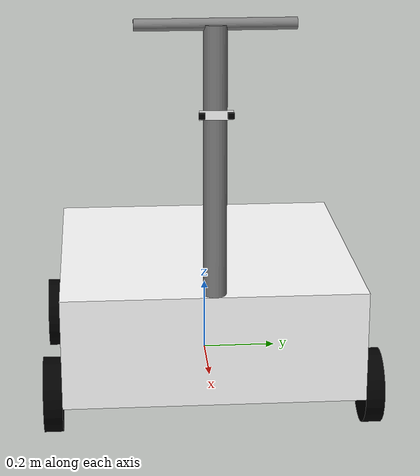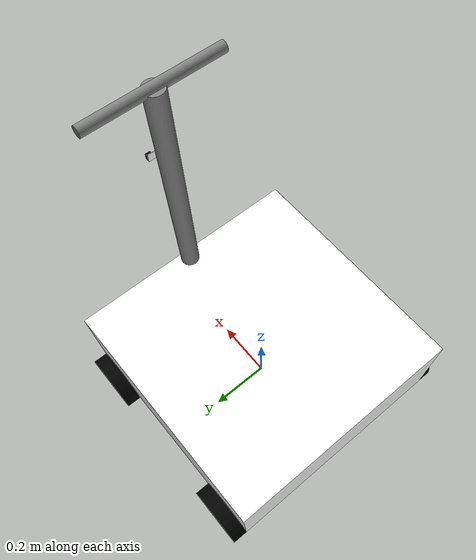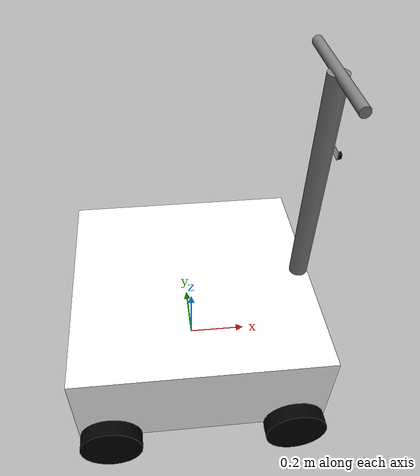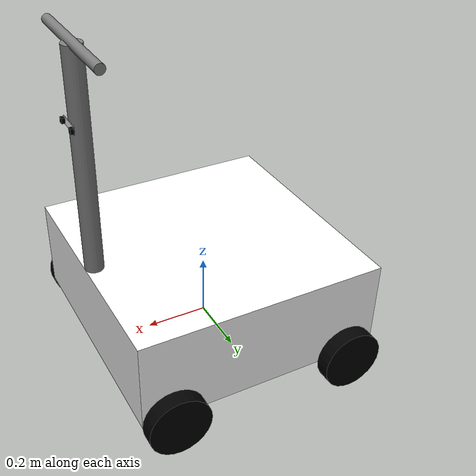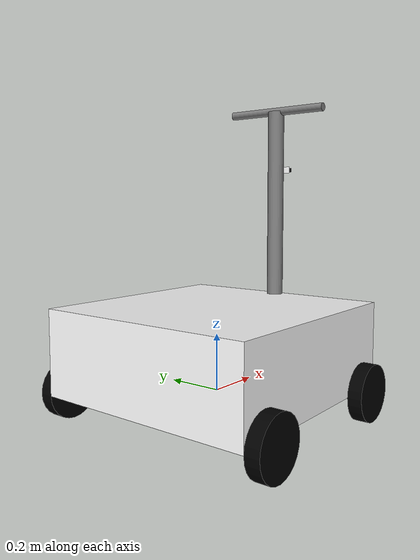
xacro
<?xml version="1.0"?>
<robot xmlns:xacro="https://www.ros.org/wiki/xacro" name="robot">

  <xacro:arg name="controller_yaml" default=""/>

  <xacro:include filename="robot_core.xacro"/>
  <xacro:include filename="control_plugin.xacro"/>
  <xacro:include filename="depth_camera.xacro"/>

  <xacro:add_drive_plugins controller_yaml="$(arg controller_yaml)"/>
  <xacro:robot_core/>

</robot>

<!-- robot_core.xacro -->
<robot xmlns:xacro="http://www.ros.org/wiki/xacro">
  <xacro:include filename="inertial_macros.xacro"/>
  <xacro:macro name="robot_core" params="">

    <material name="material_red">
        <color rgba="1.0 0.0 0.0 1.0"/>
    </material>

    <material name="material_green">
        <color rgba="0.0 1.0 0.0 1.0"/>
    </material>

    <material name="material_blue">
        <color rgba="0.0 0.0 1.0 1.0"/>
    </material>

    <material name="material_yellow">
        <color rgba="1.0 1.0 0.0 1.0"/>
    </material>

    <material name="material_purple">
        <color rgba="0.5 0.0 0.5 1.0"/>
    </material>

    <material name="material_cyan">
        <color rgba="0.0 1.0 1.0 1.0"/>
    </material>

    <material name="material_orange">
        <color rgba="1.0 0.5 0.0 1.0"/>
    </material>

    <material name="material_pink">
        <color rgba="1.0 0.0 1.0 1.0"/>
    </material>

    <material name="material_brown">
        <color rgba="0.6 0.4 0.2 1.0"/>
    </material>

    <material name="material_gray">
        <color rgba="0.5 0.5 0.5 1.0"/>
    </material>

    <material name="material_white">
        <color rgba="1.0 1.0 1.0 1.0"/>
    </material>

    <material name="material_black">
        <color rgba="0.0 0.0 0.0 1.0"/>
    </material>

    <!-- BASE LINK -->

    <link name="base_link">
    </link>

    <!-- CHASSIS LINK -->

    <joint name="chassis_joint" type="fixed">
        <parent link="base_link" />
        <child link="chassis" />
        <origin xyz="-0.4 0 0" />
    </joint>

    <link name="chassis">
        <visual>
            <origin xyz="0.4 0 0.15" />
            <geometry>
                <box size="0.8 0.8 0.3"/>
            </geometry>
            <material name="material_white"/>
        </visual>
        <collision>
            <origin xyz="0.4 0 0.15" />
            <geometry>
                <box size="0.8 0.8 0.3"/>
            </geometry>
            <material name="material_white"/>
        </collision>
        <xacro:inertial_box mass="30" x="0.8" y="0.8" z="0.3">
            <origin xyz="0.4 0 0.15" rpy="0 0 0" />
        </xacro:inertial_box>
    </link>
    <gazebo reference="chassis">
        <material> Gazebo/White </material>
    </gazebo>

    <!-- RIGHT BACK WHEEL LINK-->

    <joint name="right_back_wheel_joint" type="continuous">
        <parent link="base_link" />
        <child link="right_back_wheel" />
        <origin xyz="-0.3 -0.425 0" rpy="0 0 0" />
        <axis xyz="0 1 0" />
    </joint>
    <link name="right_back_wheel">
        <visual>
            <origin xyz="0 0 0" rpy="${3*pi/2} 0 0"/>
            <geometry>
                <cylinder length="0.05" radius="0.1"/>
            </geometry>
            <material name="material_black"/>
        </visual>
        <collision>
            <origin xyz="0 0 0" rpy="${3*pi/2} 0 0"/>
            <geometry>
                <cylinder length="0.05" radius="0.1"/>
            </geometry>
        </collision>
        <xacro:inertial_cylinder mass="0.5" length="0.05" radius="0.1">
            <origin xyz="0 0 0" rpy="0 0 0"/>
        </xacro:inertial_cylinder>
    </link>
    <gazebo reference="right_back_wheel">
        <material> Gazebo/Blue </material>
        <mu1>1.0</mu1>
        <mu2>0.1</mu2>
        <fdir1>1 0 0</fdir1>
    </gazebo>

    <!-- LEFT BACK WHEEL LINK-->

    <joint name="left_back_wheel_joint" type="continuous">
        <parent link="base_link" />
        <child link="left_back_wheel" />
        <origin xyz="-0.3 0.425 0" rpy="0 0 0" />
        <axis xyz="0 1 0" />
    </joint>

    <link name="left_back_wheel">
        <visual>
            <origin xyz="0 0 0" rpy="${-pi/2} 0 0"/>
            <geometry>
                <cylinder length="0.05" radius="0.1"/>
            </geometry>
            <material name="material_black"/>
        </visual>
        <collision>
            <origin xyz="0 0 0" rpy="${-pi/2} 0 0"/>
            <geometry>
                <cylinder length="0.05" radius="0.1"/>
            </geometry>
        </collision>
        <xacro:inertial_cylinder mass="0.5" length="0.05" radius="0.1">
            <origin xyz="0 0 0" rpy="0 0 0"/>
        </xacro:inertial_cylinder>
    </link>
    <gazebo reference="left_back_wheel">
        <material> Gazebo/Blue </material>
        <mu1>1.0</mu1>
        <mu2>0.1</mu2>
        <fdir1>1 0 0</fdir1>
    </gazebo>

    <!-- RIGHT FRONT WHEEL LINK-->

    <joint name="right_front_wheel_joint" type="continuous">
        <parent link="base_link" />
        <child link="right_front_wheel" />
        <origin xyz="0.3 -0.425 0" rpy="0 0 0" />
        <axis xyz="0 1 0" />
    </joint>
    <link name="right_front_wheel">
        <visual>
            <origin xyz="0 0 0" rpy="${3*pi/2} 0 0"/>
            <geometry>
                <cylinder length="0.05" radius="0.1"/>
            </geometry>
            <material name="material_black"/>
        </visual>
        <collision>
            <origin xyz="0 0 0" rpy="${3*pi/2} 0 0"/>
            <geometry>
                <cylinder length="0.05" radius="0.1"/>
            </geometry>
        </collision>
        <xacro:inertial_cylinder mass="0.5" length="0.05" radius="0.1">
            <origin xyz="0 0 0" rpy="0 0 0"/>
        </xacro:inertial_cylinder>
    </link>
    <gazebo reference="right_front_wheel">
        <material> Gazebo/Blue </material>
        <mu1>1.0</mu1>
        <mu2>0.1</mu2>
        <fdir1>1 0 0</fdir1>
    </gazebo>

    <!-- LEFT FRONT WHEEL LINK-->

    <joint name="left_front_wheel_joint" type="continuous">
        <parent link="base_link" />
        <child link="left_front_wheel" />
        <origin xyz="0.3 0.425 0" rpy="0 0 0" />
        <axis xyz="0 1 0" />
    </joint>

    <link name="left_front_wheel">
        <visual>
            <origin xyz="0 0 0" rpy="${-pi/2} 0 0"/>
            <geometry>
                <cylinder length="0.05" radius="0.1"/>
            </geometry>
            <material name="material_black"/>
        </visual>
        <collision>
            <origin xyz="0 0 0" rpy="${-pi/2} 0 0"/>
            <geometry>
                <cylinder length="0.05" radius="0.1"/>
            </geometry>
        </collision>
        <xacro:inertial_cylinder mass="0.5" length="0.05" radius="0.1">
            <origin xyz="0 0 0" rpy="0 0 0"/>
        </xacro:inertial_cylinder>
    </link>
    <gazebo reference="left_front_wheel">
        <material> Gazebo/Blue </material>
        <mu1>1.0</mu1>
        <mu2>0.1</mu2>
        <fdir1>1 0 0</fdir1>
    </gazebo>

    <!-- HANDLE MIDDLE LINK-->

    <joint name="handle_middle_joint" type="fixed">
        <parent link="base_link" />
        <child link="handle_middle" />
        <origin xyz="0.37 0 0.65" rpy="0 0 0" />
        <axis xyz="0 0 0" />
    </joint>

    <link name="handle_middle">
        <visual>
            <origin xyz="0 0 0" />
            <geometry>
                <cylinder length="0.7" radius="0.03"/>
            </geometry>
            <material name="material_gray"/>
        </visual>
        <collision>
            <origin xyz="0 0 0" />
            <geometry>
                <cylinder length="0.7" radius="0.03"/>
            </geometry>
        </collision>
        <xacro:inertial_cylinder mass="0.1" length="0.7" radius="0.03">
            <origin xyz="0 0 0" rpy="0 0 0"/>
        </xacro:inertial_cylinder>
    </link>
    <gazebo reference="handle_middle">
        <material> Gazebo/Grey </material>
    </gazebo>

    <!-- HANDLE LINK-->

    <joint name="handle_joint" type="fixed">
        <parent link="handle_middle" />
        <child link="handle" />
        <origin xyz="0 0 0.35" rpy="${pi/2} 0 0" />
        <axis xyz="0 0 0" />
    </joint>

    <link name="handle">
        <visual>
            <origin xyz="0 0 0" />
            <geometry>
                <cylinder length="0.4" radius="0.015"/>
            </geometry>
            <material name="material_gray"/>
        </visual>
        <collision>
            <origin xyz="0 0 0" />
            <geometry>
                <cylinder length="0.4" radius="0.015"/>
            </geometry>
        </collision>
        <xacro:inertial_cylinder mass="0.1" length="0.4" radius="0.015">
            <origin xyz="0 0 0" rpy="0 0 0"/>
        </xacro:inertial_cylinder>
    </link>
    <gazebo reference="handle">
        <material> Gazebo/Grey </material>
    </gazebo>
    <!-- Transmissions for wheel joints -->
    <transmission name="left_front_wheel_trans">
    <type>transmission_interface/SimpleTransmission</type>
    <joint name="left_front_wheel_joint">
        <hardwareInterface>velocity</hardwareInterface>
    </joint>
    <actuator name="left_front_wheel_motor">
        <hardwareInterface>velocity</hardwareInterface>
        <mechanicalReduction>1</mechanicalReduction>
    </actuator>
    </transmission>

    <transmission name="left_back_wheel_trans">
    <type>transmission_interface/SimpleTransmission</type>
    <joint name="left_back_wheel_joint">
        <hardwareInterface>velocity</hardwareInterface>
    </joint>
    <actuator name="left_back_wheel_motor">
        <hardwareInterface>velocity</hardwareInterface>
        <mechanicalReduction>1</mechanicalReduction>
    </actuator>
    </transmission>

    <transmission name="right_front_wheel_trans">
    <type>transmission_interface/SimpleTransmission</type>
    <joint name="right_front_wheel_joint">
        <hardwareInterface>velocity</hardwareInterface>
    </joint>
    <actuator name="right_front_wheel_motor">
        <hardwareInterface>velocity</hardwareInterface>
        <mechanicalReduction>1</mechanicalReduction>
    </actuator>
    </transmission>

    <transmission name="right_back_wheel_trans">
    <type>transmission_interface/SimpleTransmission</type>
    <joint name="right_back_wheel_joint">
        <hardwareInterface>velocity</hardwareInterface>
    </joint>
    <actuator name="right_back_wheel_motor">
        <hardwareInterface>velocity</hardwareInterface>
        <mechanicalReduction>1</mechanicalReduction>
    </actuator>
    </transmission>

    <ros2_control name="GazeboSystem" type="system">
    <hardware>
        <plugin>gazebo_ros2_control/GazeboSystem</plugin>
    </hardware>

    <joint name="left_front_wheel_joint">
        <command_interface name="velocity"/>
        <state_interface name="velocity"/>
        <state_interface name="position"/>
    </joint>

    <joint name="left_back_wheel_joint">
        <command_interface name="velocity"/>
        <state_interface name="velocity"/>
        <state_interface name="position"/>
    </joint>

    <joint name="right_front_wheel_joint">
        <command_interface name="velocity"/>
        <state_interface name="velocity"/>
        <state_interface name="position"/>
    </joint>

    <joint name="right_back_wheel_joint">
        <command_interface name="velocity"/>
        <state_interface name="velocity"/>
        <state_interface name="position"/>
    </joint>
    </ros2_control>
    </xacro:macro>
</robot>

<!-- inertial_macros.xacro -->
<robot xmlns:xacro="http://www.ros.org/wiki/xacro" >

    <!-- Specify some standard inertial calculations https://en.wikipedia.org/wiki/List_of_moments_of_inertia -->
    <!-- These make use of xacro's mathematical functionality -->

    <xacro:macro name="inertial_sphere" params="mass radius *origin">
        <inertial>
            <xacro:insert_block name="origin"/>
            <mass value="${mass}" />
            <inertia ixx="${(2/5) * mass * (radius*radius)}" ixy="0.0" ixz="0.0"
                    iyy="${(2/5) * mass * (radius*radius)}" iyz="0.0"
                    izz="${(2/5) * mass * (radius*radius)}" />
        </inertial>
    </xacro:macro>

    <xacro:macro name="inertial_box" params="mass x y z *origin">
        <inertial>
            <xacro:insert_block name="origin"/>
            <mass value="${mass}" />
            <inertia ixx="${(1/12) * mass * (y*y+z*z)}" ixy="0.0" ixz="0.0"
                    iyy="${(1/12) * mass * (x*x+z*z)}" iyz="0.0"
                    izz="${(1/12) * mass * (x*x+y*y)}" />
        </inertial>
    </xacro:macro>

    <xacro:macro name="inertial_cylinder" params="mass length radius *origin">
        <inertial>
            <xacro:insert_block name="origin"/>
            <mass value="${mass}" />
            <inertia
                ixx="${(1/12) * mass * (3*radius*radius + length*length)}"
                ixy="0.0"
                ixz="0.0"
                iyy="${(1/2) * mass * (radius*radius)}"
                iyz="0.0"
                izz="${(1/12) * mass * (3*radius*radius + length*length)}" />
        </inertial>
    </xacro:macro>
</robot>

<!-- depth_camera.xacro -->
<robot xmlns:xacro="http://www.ros.org/wiki/xacro">
  <!-- Depth camera back link (box) -->
  <joint name="depth_camera_back_joint" type="fixed">
    <parent link="handle_middle"/>
    <child link="depth_camera_back_link"/>
    <origin xyz="0.03 0 0.13" rpy="0 0 0"/>
  </joint>

  <link name="depth_camera_back_link">
    <visual>
      <geometry>
        <box size="0.0016 0.085 0.024"/>
      </geometry>
      <material name="material_white"/>
    </visual>
    <collision>
      <geometry>
        <box size="0.0016 0.085 0.024"/>
      </geometry>
    </collision>
    <xacro:inertial_box mass="0.05" x="0.0016" y="0.085" z="0.024">
      <origin xyz="0 0 0" rpy="0 0 0"/>
    </xacro:inertial_box>
  </link>

  <gazebo reference="depth_camera_back_link">
    <material>Gazebo/White</material>
  </gazebo>

  <!-- Left camera cylinder -->
  <joint name="left_camera_joint" type="fixed">
    <parent link="depth_camera_back_link"/>
    <child link="left_camera_link"/>
    <origin xyz="0.0058 -0.036 0" rpy="0 0 0"/> <!-- Rotate to length along x (forward), baseline along y -->
  </joint>

  <link name="left_camera_link">
    <visual>
      <geometry>
        <box size = "0.01 0.0155 0.0155"/> <!-- Length along x (forward) -->
      </geometry>
      <material name="material_black"/>
    </visual>
    <collision>
      <geometry>
        <box size = "0.01 0.0155 0.0155"/>
      </geometry>
    </collision>
    <xacro:inertial_box mass="0.02" x="0.01" y="0.0155" z="0.0155">
      <origin xyz="0 0 0" rpy="0 0 0"/>
    </xacro:inertial_box>
  </link>

  <gazebo reference="left_camera_link">
    <material>Gazebo/Black</material>
    <sensor type="camera" name="left_camera">
      <always_on>true</always_on>
      <visualize>true</visualize>
      <update_rate>30</update_rate>
      <camera>
        <horizontal_fov>1.044815127601244</horizontal_fov>
        <image>
          <width>640</width>
          <height>480</height>
          <format>R8G8B8</format>
        </image>
        <clip>
          <near>0.02</near>
          <far>50.0</far>
        </clip>
      </camera>
      <plugin name="left_camera_controller" filename="libgazebo_ros_camera.so">
        <ros>
          <namespace>/follower_robot</namespace>
        </ros>
        <camera_name>depth_cam/left</camera_name>
        <frame_name>left_camera_link_optical</frame_name>
      </plugin>
    </sensor>
  </gazebo>

  <!-- Left optical frame (view from front flat base) -->
  <joint name="left_camera_optical_joint" type="fixed">
    <parent link="left_camera_link"/>
    <child link="left_camera_link_optical"/>
    <origin xyz="0.01 0 0" rpy="${-pi/2} 0 ${-pi/2}"/> <!-- Shift to front flat (+0.01 x), rotate for ROS optical convention -->
  </joint>

  <link name="left_camera_link_optical"/>

  <!-- Right camera cylinder -->
  <joint name="right_camera_joint" type="fixed">
    <parent link="depth_camera_back_link"/>
    <child link="right_camera_link"/>
    <origin xyz="0.0058 0.036 0" rpy="0 0 0"/> <!-- Rotate to length along x (forward), baseline along y -->
  </joint>

  <link name="right_camera_link">
    <visual>
      <geometry>
        <box size = "0.01 0.0155 0.0155"/> <!-- Length along x (forward) -->
      </geometry>
      <material name="material_black"/>
    </visual>
    <collision>
      <geometry>
        <box size = "0.01 0.0155 0.0155"/>
      </geometry>
    </collision>
    <xacro:inertial_box mass="0.02" x="0.01" y="0.0155" z="0.0155">
      <origin xyz="0 0 0" rpy="0 0 0"/>
    </xacro:inertial_box>
  </link>

  <gazebo reference="right_camera_link">
    <material>Gazebo/Black</material>
    <sensor type="camera" name="right_camera">
      <always_on>true</always_on>
      <visualize>true</visualize>
      <update_rate>30</update_rate>
      <camera>
        <horizontal_fov>1.044815127601244</horizontal_fov>
        <image>
          <width>640</width>
          <height>480</height>
          <format>R8G8B8</format>
        </image>
        <clip>
          <near>0.02</near>
          <far>50.0</far>
        </clip>
      </camera>
      <plugin name="right_camera_controller" filename="libgazebo_ros_camera.so">
        <ros>
          <namespace>/follower_robot</namespace>
        </ros>
        <camera_name>depth_cam/right</camera_name>  <!-- Sets prefix for topics: /depth_cam/right/image_raw and /depth_cam/right/camera_info -->
        <frame_name>right_camera_link_optical</frame_name>
        <hack_baseline>-0.071727</hack_baseline>
      </plugin>
    </sensor>
  </gazebo>

  <!-- Right optical frame (view from front flat base) -->
  <joint name="right_camera_optical_joint" type="fixed">
    <parent link="right_camera_link"/>
    <child link="right_camera_link_optical"/>
    <origin xyz="0.01 0 0" rpy="${-pi/2} 0 ${-pi/2}"/> <!-- Shift to front flat (+0.01 x), rotate for ROS optical convention -->
  </joint>

  <link name="right_camera_link_optical"/>
  <plugin name="clock_sync" filename="libgazebo_ros_clock.so">
    <ros>
      <namespace>/</namespace>
    </ros>
  </plugin>
</robot>
